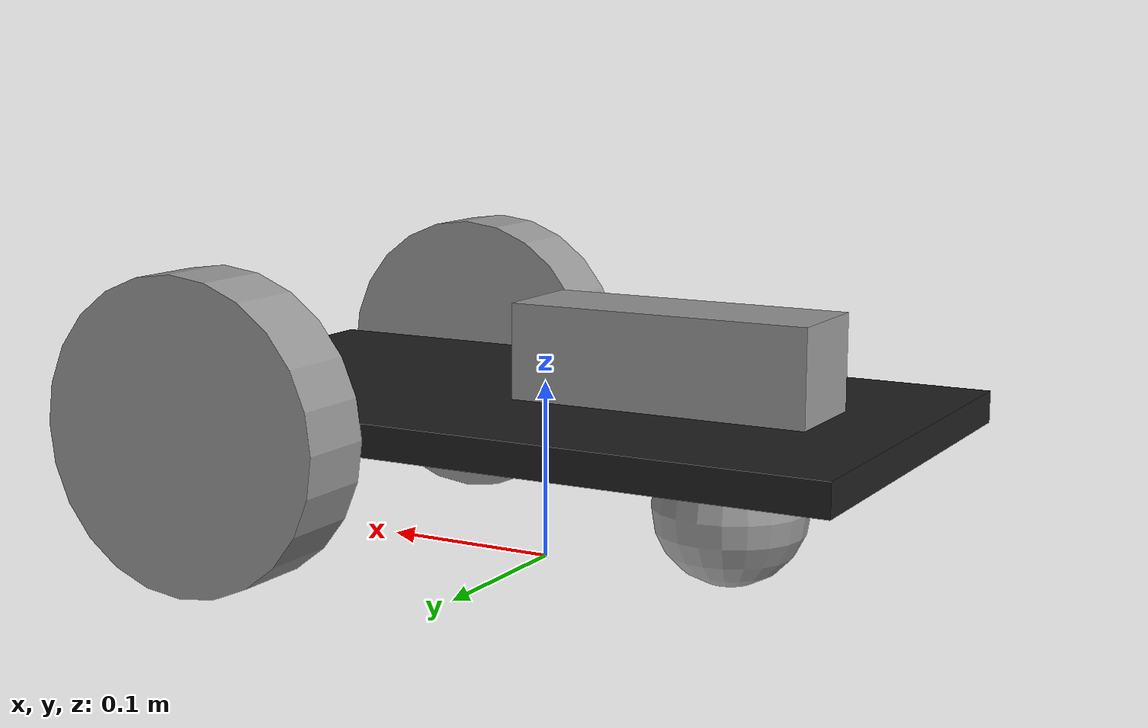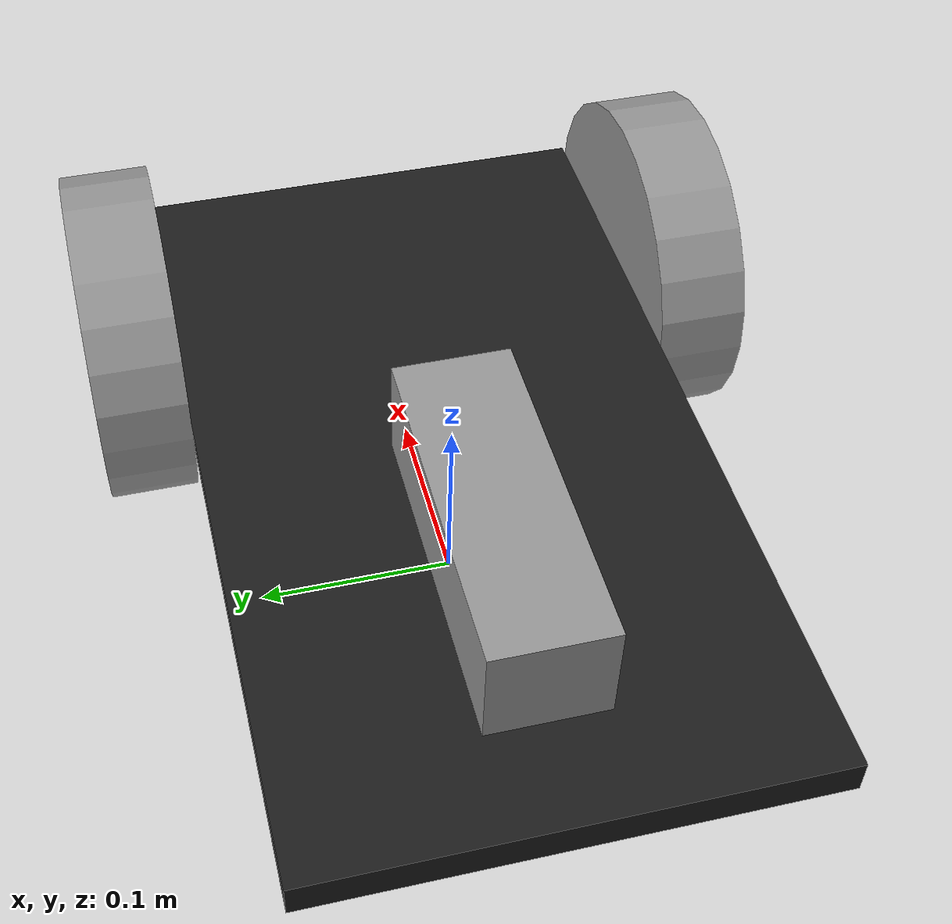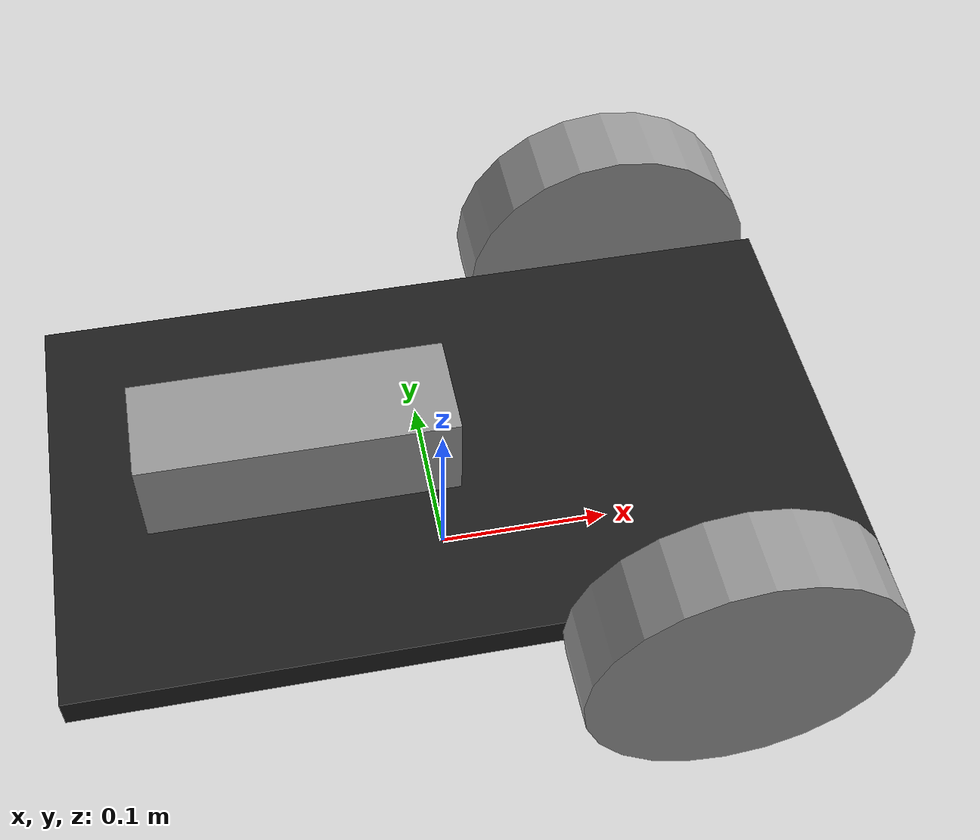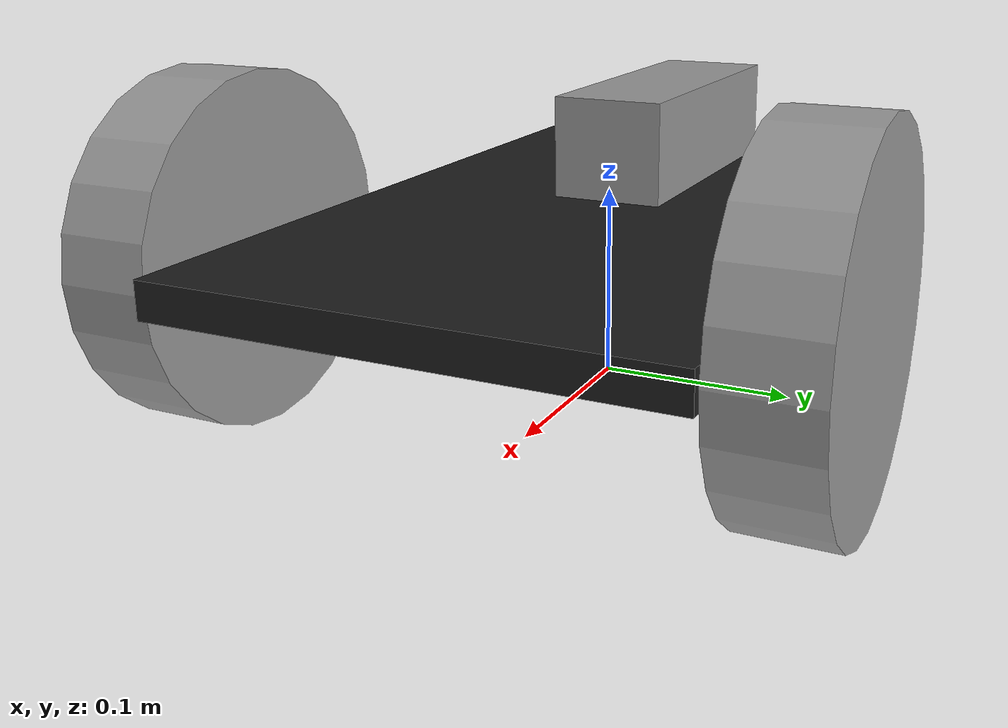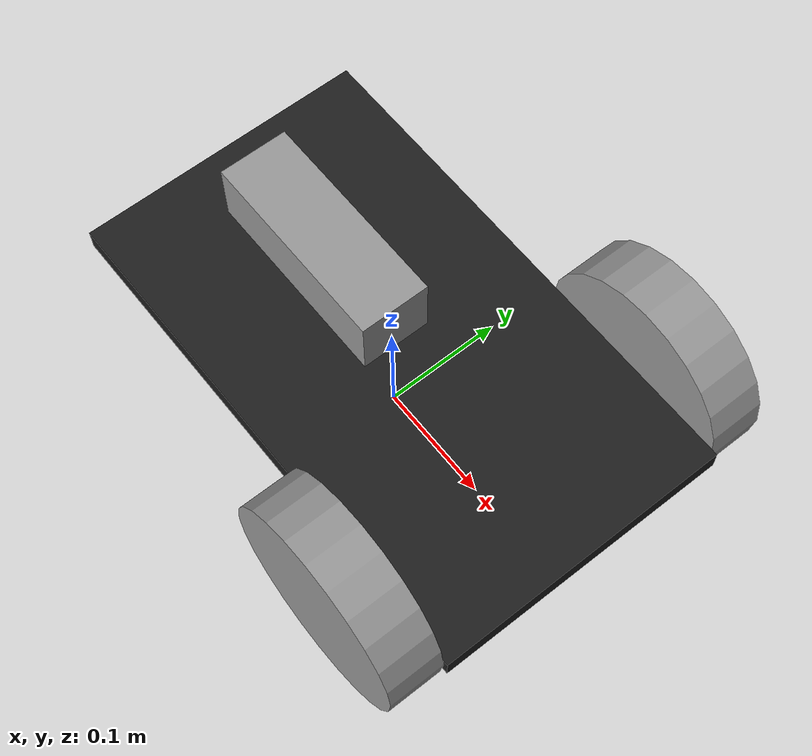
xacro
<?xml version="1.0"?>
<robot xmlns:xacro="http://www.ros.org/wiki/xacro">
    <xacro:property name="scale_factor" value="0.001" />

     <!--Base size -->
    <xacro:property name="base_length" value="0.43" />
    <xacro:property name="base_width" value="0.245" />
    <xacro:property name="base_height" value="0.018" />
    <xacro:property name="base_mass" value="1" />

    <!--Castor wheel size -->
    <xacro:property name="castor_radius" value="0.022" />
    <xacro:property name="castor_height" value="0.007" />
    <xacro:property name="castor_mass" value="0.08" />

    <!--Realsense size -->
    <xacro:property name="realsense_length" value="0.025" />
    <xacro:property name="realsense_width" value="0.09" />
    <xacro:property name="realsense_height" value="0.025" />
    <xacro:property name="realsense_mass" value="0.072" />

    <!--Jetson size -->
    <xacro:property name="jetson_length" value="0.10" />
    <xacro:property name="jetson_width" value="0.079" />
    <xacro:property name="jetson_height" value="0.029" />
    <xacro:property name="jetson_mass" value="0.28" />

    <!--Odrive size -->
    <xacro:property name="odrive_radius" value="0.0855" />
    <xacro:property name="odrive_height" value="0.045" />
    <xacro:property name="odrive_mass" value="2.2" />

    <!--Rplidar mount size-->
    <xacro:property name="rplidar_mount_length" value="0.075" />
    <xacro:property name="rplidar_mount_width" value="0.075" />
    <xacro:property name="rplidar_mount_height" value="0.045" />
    <xacro:property name="rplidar_mount_mass" value="0.34" />

    <!--Tattu battery size -->
    <xacro:property name="battery_length" value="0.17" />
    <xacro:property name="battery_width" value="0.058" />
    <xacro:property name="battery_height" value="0.062" />
    <xacro:property name="battery_mass" value="1.974" />

    <link name="base_link">

    </link>

    <!-- Platform link -->

    <joint name="platform_joint" type="fixed">
        <parent link="base_link" />
        <child link="platform" />
        <origin xyz="0 0 ${odrive_radius}" />
    </joint>

    <link name="platform">
        <visual>
            <geometry>
                <box size="${base_length} ${base_width} ${base_height}" />
            </geometry>
            <origin xyz="0 0 0" rpy="0 0 0" />
        </visual>
        <collision>
            <geometry>
                <box size="${base_length} ${base_width} ${base_height}" />
            </geometry>
            <origin xyz="0 0 0" rpy="0 0 0" />
        </collision>
        <xacro:box_inertia m="${base_mass}" l="${base_length}" w="${base_width}" h="${base_height}"
            xyz="0 0 0" rpy="0 0 0" />
    </link>

    <gazebo reference="platform">
        <material>Gazebo/Black</material>
    </gazebo>

    <!-- Battery link -->

    <joint name="battery_joint" type="fixed">
        <parent link="platform" />
        <child link="battery" />
        <origin xyz="-0.08 0 ${battery_height/2}" rpy="0 0 0" />
    </joint>

    <link name="battery">
        <visual>
            <geometry>
                <box size="${battery_length} ${battery_width} ${battery_height}" />
            </geometry>
            <origin xyz="0 0 0" rpy="0 0 0" />
        </visual>
        <collision>
            <geometry>
                <box size="${battery_length} ${battery_width} ${battery_height}" />
            </geometry>
            <origin xyz="0 0 0" rpy="0 0 0" />
        </collision>
        <xacro:box_inertia m="${battery_mass}" l="${battery_length}" w="${battery_width}" h="${battery_height}"
            xyz="0 0 0" rpy="0 0 0" />
    </link>

    <gazebo reference="battery">
        <material>Gazebo/Grey</material>
    </gazebo>

    <!-- Left wheel link -->
    <joint name="left_wheel_joint" type="continuous">
        <parent link="base_link" />
        <child link="left_wheel" />
        <origin xyz="${odrive_radius + 0.04} ${(-base_width / 2) - (odrive_height/2)} ${odrive_radius}" rpy="-${pi/2} 0 0" />
        <axis xyz="0 0 -1"/>
    </joint>

    <link name="left_wheel">
        <visual>
            <geometry>
                <cylinder radius="${odrive_radius}" length="${odrive_height}" />
            </geometry>
        </visual>
        <collision>
            <geometry>
                <cylinder radius="${odrive_radius}" length="${odrive_height}" />
            </geometry>
            <origin xyz="0 0 0" rpy="0 0 0" />
        </collision>
        <xacro:cylinder_inertia m="${odrive_mass}" r="${odrive_radius}" h="${odrive_height}"
            xyz="0 0 0" rpy="0 0 0" />
    </link>

    <gazebo reference="left_wheel">
        <material>Gazebo/Grey</material>
    </gazebo>

    <!-- Right wheel link -->
    <joint name="right_wheel_joint" type="continuous">
        <parent link="base_link" />
        <child link="right_wheel" />
        <origin xyz="${odrive_radius + 0.04} ${(base_width / 2) + (odrive_height/2)} ${odrive_radius}" rpy="${pi/2} 0 0" />
        <axis xyz="0 0 1"/>
    </joint>

    <link name="right_wheel">
        <visual>
            <geometry>
                <cylinder radius="${odrive_radius}" length="${odrive_height}" />
            </geometry>
        </visual>
        <collision>
            <geometry>
                <cylinder radius="${odrive_radius}" length="${odrive_height}" />
            </geometry>
            <origin xyz="0 0 0" rpy="0 0 0" />
        </collision>
        <xacro:cylinder_inertia m="${odrive_mass}" r="${odrive_radius}" h="${odrive_height}"
            xyz="0 0 0" rpy="0 0 0" />
    </link>

    <gazebo reference="right_wheel">
        <material>Gazebo/Grey</material>
    </gazebo>

    <!-- Castor Wheel link -->

    <joint name="castor_joint" type="fixed">
        <parent link="base_link" />
        <child link="castor_wheel" />
        <origin xyz="${-(2/7)*base_length + 0.01} 0 ${odrive_radius/2}" rpy="0 0 0" />
    </joint>

    <link name="castor_wheel">
        <visual>
            <geometry>
                <sphere radius="${odrive_radius/2}" />
            </geometry>
        </visual>
        <collision>
            <geometry>
                <sphere radius="${odrive_radius/2}" />
            </geometry>
            <origin xyz="0 0 0" rpy="0 0 0" />
        </collision>
        <xacro:cylinder_inertia m="${castor_mass}" r="${castor_radius}" h="${castor_height}"
            xyz="0 0 0" rpy="0 0 0" />
    </link>

    <gazebo reference="castor_wheel">
        <material>Gazebo/Grey</material>
        <mu1 value="0.001"/>
        <mu2 value="0.001"/>
    </gazebo>

</robot>
